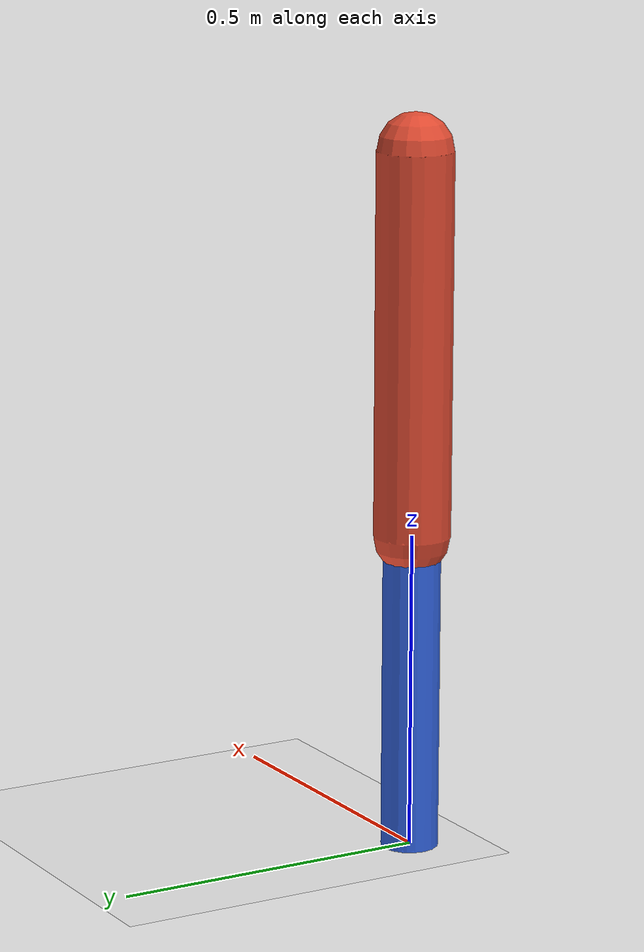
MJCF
<mujoco model="ankle_hip">
  <compiler inertiafromgeom="true" coordinate="local"/>
  <option timestep="0.02" gravity="0 0 -9.81" integrator="RK4"/>

  <default>
    <joint armature="0" damping="1" limited="false"/>
    <geom contype="0" conaffinity="0" friction="1 0.1 0.1" rgba="0.7 0.7 0 1"/>
  </default>

  <worldbody>
    <!-- ground plane for reference -->
    <geom name="floor" type="plane" pos="0 0 0" size="5 5 0.1" rgba="0.9 0.9 0.9 1"/>

    <!-- ankle: fixed base joint, rotates lower segment (legs) -->
    <body name="lower_segment" pos="0 0 0">
      <joint name="ankle" type="hinge" pos="0 0 0" axis="0 1 0" damping="1"/>
      <geom name="lower_geom" type="capsule" fromto="0 0 0 0 0 0.5" size="0.045" rgba="0.2 0.4 0.9 1"/>
      <inertial pos="0 0 0.25" mass="30" diaginertia="1.5 1.5 0.1"/>

      <!-- hip: second joint at top of lower segment, rotates upper segment (trunk) -->
      <body name="upper_segment" pos="0 0 0.5">
        <joint name="hip" type="hinge" pos="0 0 0" axis="0 1 0" damping="1"/>
        <geom name="upper_geom" type="capsule" fromto="0 0 0 0 0 0.6" size="0.06" rgba="0.9 0.3 0.2 1"/>
        <inertial pos="0 0 0.3" mass="40" diaginertia="2.0 2.0 0.15"/>
      </body>
    </body>
  </worldbody>

  <actuator>
    <motor name="ankle_motor" joint="ankle" gear="300" ctrlrange="-1 1" ctrllimited="true"/>
    <motor name="hip_motor" joint="hip" gear="300" ctrlrange="-1 1" ctrllimited="true"/>
  </actuator>
</mujoco>
